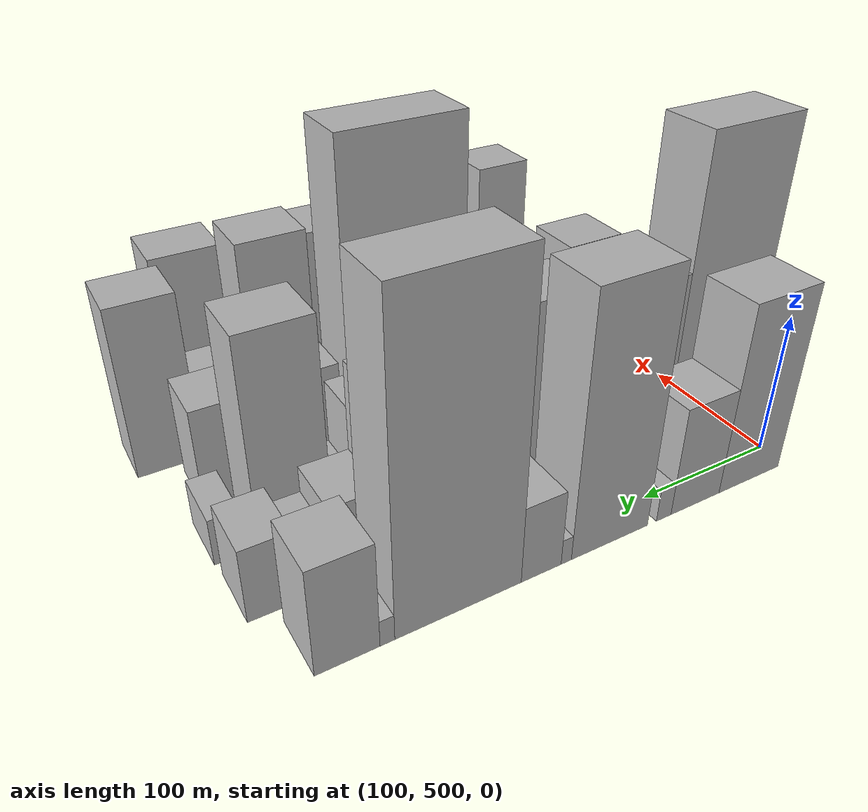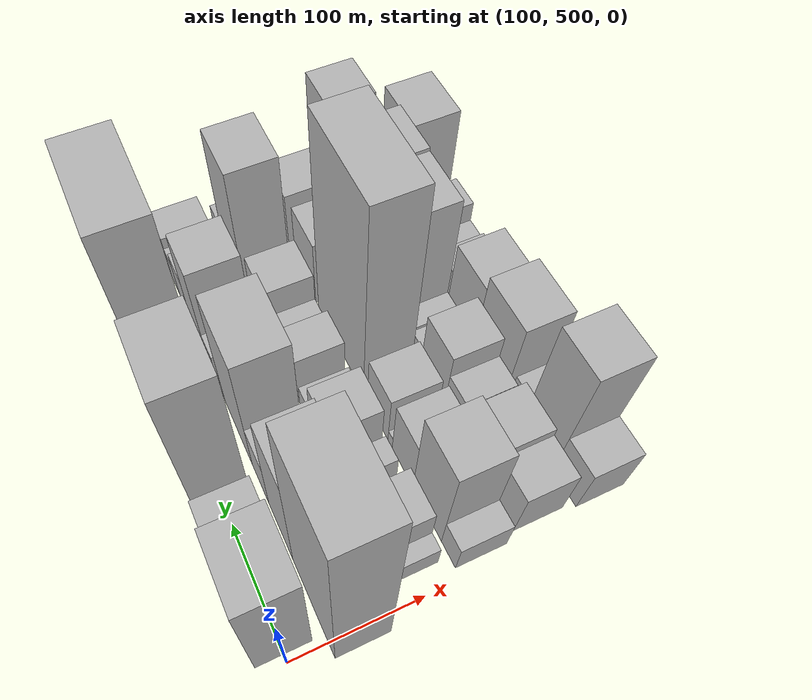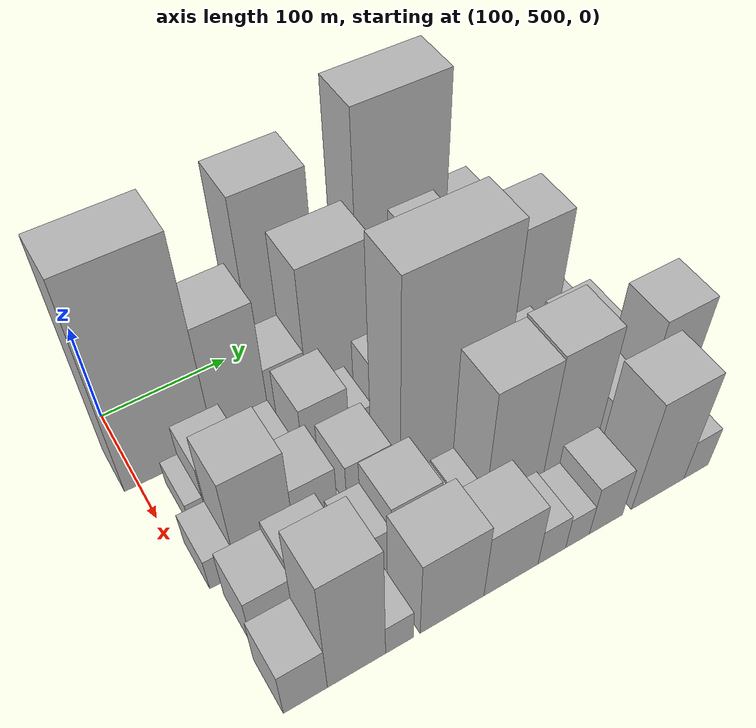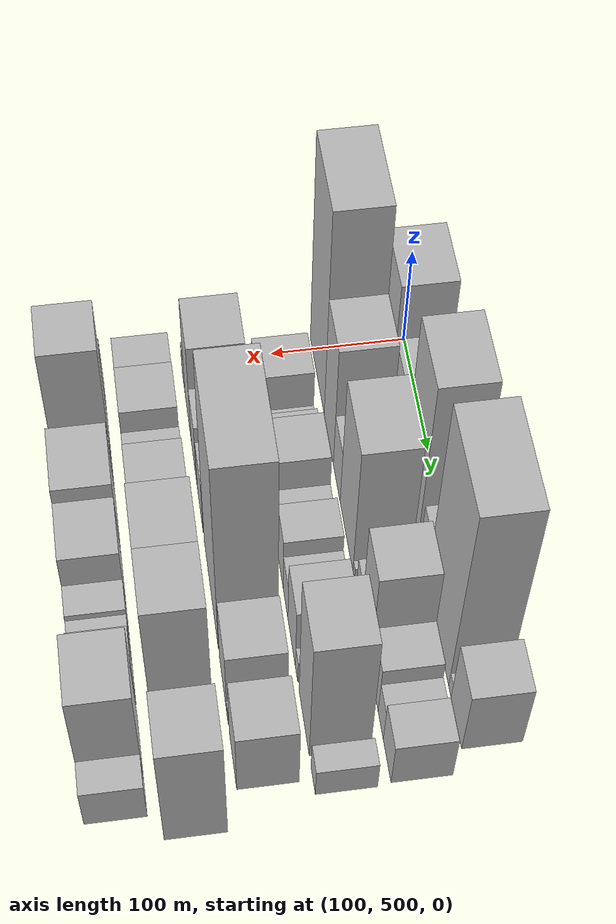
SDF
<sdf version="1.6">
 <world name="default">
  <model name="building_38">
   <static>1</static>
   <pose>100.0000 531.5187 0 0.000000 0.000000 0.000000</pose>
   <link name="link">
    <pose>0 0 67.50 0 0 0</pose>
    <collision name="collision"><geometry><box><size>40.0000 51.7555 135.0000</size></box></geometry></collision>
    <visual name="visual">
     <cast_shadows>0</cast_shadows>
     <geometry><box><size>40.0000 51.7555 135.0000</size></box></geometry>
     <material>
      <script>
       <uri>model://HANNAS_wall/materials/scripts</uri>
       <uri>model://HANNAS_wall/materials/textures</uri>
       <name>vrc/HANNAS_wall</name>
      </script>
     </material>
    </visual>
   </link>
  </model>
  <model name="building_39">
   <static>1</static>
   <pose>100.0000 577.1728 0 0.000000 0.000000 0.000000</pose>
   <link name="link">
    <pose>0 0 39.00 0 0 0</pose>
    <collision name="collision"><geometry><box><size>40.0000 39.5526 78.0000</size></box></geometry></collision>
    <visual name="visual">
     <cast_shadows>0</cast_shadows>
     <geometry><box><size>40.0000 39.5526 78.0000</size></box></geometry>
     <material>
      <script>
       <uri>model://HANNAS_wall/materials/scripts</uri>
       <uri>model://HANNAS_wall/materials/textures</uri>
       <name>vrc/HANNAS_wall</name>
      </script>
     </material>
    </visual>
   </link>
  </model>
  <model name="building_40">
   <static>1</static>
   <pose>100.0000 602.6989 0 0.000000 0.000000 0.000000</pose>
   <link name="link">
    <pose>0 0 12.00 0 0 0</pose>
    <collision name="collision"><geometry><box><size>40.0000 11.4995 24.0000</size></box></geometry></collision>
    <visual name="visual">
     <cast_shadows>0</cast_shadows>
     <geometry><box><size>40.0000 11.4995 24.0000</size></box></geometry>
     <material>
      <script>
       <uri>model://HANNAS_wall/materials/scripts</uri>
       <uri>model://HANNAS_wall/materials/textures</uri>
       <name>vrc/HANNAS_wall</name>
      </script>
     </material>
    </visual>
   </link>
  </model>
  <model name="building_41">
   <static>1</static>
   <pose>100.0000 643.7409 0 0.000000 0.000000 0.000000</pose>
   <link name="link">
    <pose>0 0 88.50 0 0 0</pose>
    <collision name="collision"><geometry><box><size>40.0000 56.5845 177.0000</size></box></geometry></collision>
    <visual name="visual">
     <cast_shadows>0</cast_shadows>
     <geometry><box><size>40.0000 56.5845 177.0000</size></box></geometry>
     <material>
      <script>
       <uri>model://HANNAS_wall/materials/scripts</uri>
       <uri>model://HANNAS_wall/materials/textures</uri>
       <name>vrc/HANNAS_wall</name>
      </script>
     </material>
    </visual>
   </link>
  </model>
  <model name="building_42">
   <static>1</static>
   <pose>100.0000 675.6521 0 0.000000 0.000000 0.000000</pose>
   <link name="link">
    <pose>0 0 9.00 0 0 0</pose>
    <collision name="collision"><geometry><box><size>40.0000 7.2379 18.0000</size></box></geometry></collision>
    <visual name="visual">
     <cast_shadows>0</cast_shadows>
     <geometry><box><size>40.0000 7.2379 18.0000</size></box></geometry>
     <material>
      <script>
       <uri>model://HANNAS_wall/materials/scripts</uri>
       <uri>model://HANNAS_wall/materials/textures</uri>
       <name>vrc/HANNAS_wall</name>
      </script>
     </material>
    </visual>
   </link>
  </model>
  <model name="building_43">
   <static>1</static>
   <pose>100.0000 692.9659 0 0.000000 0.000000 0.000000</pose>
   <link name="link">
    <pose>0 0 27.00 0 0 0</pose>
    <collision name="collision"><geometry><box><size>40.0000 27.3897 54.0000</size></box></geometry></collision>
    <visual name="visual">
     <cast_shadows>0</cast_shadows>
     <geometry><box><size>40.0000 27.3897 54.0000</size></box></geometry>
     <material>
      <script>
       <uri>model://HANNAS_wall/materials/scripts</uri>
       <uri>model://HANNAS_wall/materials/textures</uri>
       <name>vrc/HANNAS_wall</name>
      </script>
     </material>
    </visual>
   </link>
  </model>
  <model name="building_44">
   <static>1</static>
   <pose>100.0000 746.2942 0 0.000000 0.000000 0.000000</pose>
   <link name="link">
    <pose>0 0 105.00 0 0 0</pose>
    <collision name="collision"><geometry><box><size>40.0000 79.2670 210.0000</size></box></geometry></collision>
    <visual name="visual">
     <cast_shadows>0</cast_shadows>
     <geometry><box><size>40.0000 79.2670 210.0000</size></box></geometry>
     <material>
      <script>
       <uri>model://HANNAS_wall/materials/scripts</uri>
       <uri>model://HANNAS_wall/materials/textures</uri>
       <name>vrc/HANNAS_wall</name>
      </script>
     </material>
    </visual>
   </link>
  </model>
  <model name="building_45">
   <static>1</static>
   <pose>100.0000 790.2216 0 0.000000 0.000000 0.000000</pose>
   <link name="link">
    <pose>0 0 9.00 0 0 0</pose>
    <collision name="collision"><geometry><box><size>40.0000 8.5877 18.0000</size></box></geometry></collision>
    <visual name="visual">
     <cast_shadows>0</cast_shadows>
     <geometry><box><size>40.0000 8.5877 18.0000</size></box></geometry>
     <material>
      <script>
       <uri>model://HANNAS_wall/materials/scripts</uri>
       <uri>model://HANNAS_wall/materials/textures</uri>
       <name>vrc/HANNAS_wall</name>
      </script>
     </material>
    </visual>
   </link>
  </model>
  <model name="building_46">
   <static>1</static>
   <pose>100.0000 812.9221 0 0.000000 0.000000 0.000000</pose>
   <link name="link">
    <pose>0 0 36.00 0 0 0</pose>
    <collision name="collision"><geometry><box><size>40.0000 36.8133 72.0000</size></box></geometry></collision>
    <visual name="visual">
     <cast_shadows>0</cast_shadows>
     <geometry><box><size>40.0000 36.8133 72.0000</size></box></geometry>
     <material>
      <script>
       <uri>model://HANNAS_wall/materials/scripts</uri>
       <uri>model://HANNAS_wall/materials/textures</uri>
       <name>vrc/HANNAS_wall</name>
      </script>
     </material>
    </visual>
   </link>
  </model>
  <model name="building_85">
   <static>1</static>
   <pose>149.0000 524.4606 0 0.000000 0.000000 0.000000</pose>
   <link name="link">
    <pose>0 0 109.50 0 0 0</pose>
    <collision name="collision"><geometry><box><size>40.0000 69.9569 219.0000</size></box></geometry></collision>
    <visual name="visual">
     <cast_shadows>0</cast_shadows>
     <geometry><box><size>40.0000 69.9569 219.0000</size></box></geometry>
     <material>
      <script>
       <uri>model://HANNAS_wall/materials/scripts</uri>
       <uri>model://HANNAS_wall/materials/textures</uri>
       <name>vrc/HANNAS_wall</name>
      </script>
     </material>
    </visual>
   </link>
  </model>
  <model name="building_86">
   <static>1</static>
   <pose>149.0000 581.4133 0 0.000000 0.000000 0.000000</pose>
   <link name="link">
    <pose>0 0 66.00 0 0 0</pose>
    <collision name="collision"><geometry><box><size>40.0000 43.9486 132.0000</size></box></geometry></collision>
    <visual name="visual">
     <cast_shadows>0</cast_shadows>
     <geometry><box><size>40.0000 43.9486 132.0000</size></box></geometry>
     <material>
      <script>
       <uri>model://HANNAS_wall/materials/scripts</uri>
       <uri>model://HANNAS_wall/materials/textures</uri>
       <name>vrc/HANNAS_wall</name>
      </script>
     </material>
    </visual>
   </link>
  </model>
  <model name="building_87">
   <static>1</static>
   <pose>149.0000 619.3359 0 0.000000 0.000000 0.000000</pose>
   <link name="link">
    <pose>0 0 30.00 0 0 0</pose>
    <collision name="collision"><geometry><box><size>40.0000 31.8965 60.0000</size></box></geometry></collision>
    <visual name="visual">
     <cast_shadows>0</cast_shadows>
     <geometry><box><size>40.0000 31.8965 60.0000</size></box></geometry>
     <material>
      <script>
       <uri>model://HANNAS_wall/materials/scripts</uri>
       <uri>model://HANNAS_wall/materials/textures</uri>
       <name>vrc/HANNAS_wall</name>
      </script>
     </material>
    </visual>
   </link>
  </model>
  <model name="building_88">
   <static>1</static>
   <pose>149.0000 663.8226 0 0.000000 0.000000 0.000000</pose>
   <link name="link">
    <pose>0 0 72.00 0 0 0</pose>
    <collision name="collision"><geometry><box><size>40.0000 57.0769 144.0000</size></box></geometry></collision>
    <visual name="visual">
     <cast_shadows>0</cast_shadows>
     <geometry><box><size>40.0000 57.0769 144.0000</size></box></geometry>
     <material>
      <script>
       <uri>model://HANNAS_wall/materials/scripts</uri>
       <uri>model://HANNAS_wall/materials/textures</uri>
       <name>vrc/HANNAS_wall</name>
      </script>
     </material>
    </visual>
   </link>
  </model>
  <model name="building_89">
   <static>1</static>
   <pose>149.0000 695.7765 0 0.000000 0.000000 0.000000</pose>
   <link name="link">
    <pose>0 0 7.50 0 0 0</pose>
    <collision name="collision"><geometry><box><size>40.0000 6.8309 15.0000</size></box></geometry></collision>
    <visual name="visual">
     <cast_shadows>0</cast_shadows>
     <geometry><box><size>40.0000 6.8309 15.0000</size></box></geometry>
     <material>
      <script>
       <uri>model://HANNAS_wall/materials/scripts</uri>
       <uri>model://HANNAS_wall/materials/textures</uri>
       <name>vrc/HANNAS_wall</name>
      </script>
     </material>
    </visual>
   </link>
  </model>
  <model name="building_90">
   <static>1</static>
   <pose>149.0000 718.0251 0 0.000000 0.000000 0.000000</pose>
   <link name="link">
    <pose>0 0 21.00 0 0 0</pose>
    <collision name="collision"><geometry><box><size>40.0000 21.6663 42.0000</size></box></geometry></collision>
    <visual name="visual">
     <cast_shadows>0</cast_shadows>
     <geometry><box><size>40.0000 21.6663 42.0000</size></box></geometry>
     <material>
      <script>
       <uri>model://HANNAS_wall/materials/scripts</uri>
       <uri>model://HANNAS_wall/materials/textures</uri>
       <name>vrc/HANNAS_wall</name>
      </script>
     </material>
    </visual>
   </link>
  </model>
  <model name="building_91">
   <static>1</static>
   <pose>149.0000 748.0016 0 0.000000 0.000000 0.000000</pose>
   <link name="link">
    <pose>0 0 58.50 0 0 0</pose>
    <collision name="collision"><geometry><box><size>40.0000 38.2867 117.0000</size></box></geometry></collision>
    <visual name="visual">
     <cast_shadows>0</cast_shadows>
     <geometry><box><size>40.0000 38.2867 117.0000</size></box></geometry>
     <material>
      <script>
       <uri>model://HANNAS_wall/materials/scripts</uri>
       <uri>model://HANNAS_wall/materials/textures</uri>
       <name>vrc/HANNAS_wall</name>
      </script>
     </material>
    </visual>
   </link>
  </model>
  <model name="building_92">
   <static>1</static>
   <pose>149.0000 782.6571 0 0.000000 0.000000 0.000000</pose>
   <link name="link">
    <pose>0 0 28.50 0 0 0</pose>
    <collision name="collision"><geometry><box><size>40.0000 31.0244 57.0000</size></box></geometry></collision>
    <visual name="visual">
     <cast_shadows>0</cast_shadows>
     <geometry><box><size>40.0000 31.0244 57.0000</size></box></geometry>
     <material>
      <script>
       <uri>model://HANNAS_wall/materials/scripts</uri>
       <uri>model://HANNAS_wall/materials/textures</uri>
       <name>vrc/HANNAS_wall</name>
      </script>
     </material>
    </visual>
   </link>
  </model>
  <model name="building_93">
   <static>1</static>
   <pose>149.0000 808.3159 0 0.000000 0.000000 0.000000</pose>
   <link name="link">
    <pose>0 0 19.50 0 0 0</pose>
    <collision name="collision"><geometry><box><size>40.0000 20.2931 39.0000</size></box></geometry></collision>
    <visual name="visual">
     <cast_shadows>0</cast_shadows>
     <geometry><box><size>40.0000 20.2931 39.0000</size></box></geometry>
     <material>
      <script>
       <uri>model://HANNAS_wall/materials/scripts</uri>
       <uri>model://HANNAS_wall/materials/textures</uri>
       <name>vrc/HANNAS_wall</name>
      </script>
     </material>
    </visual>
   </link>
  </model>
  <model name="building_94">
   <static>1</static>
   <pose>149.0000 833.4005 0 0.000000 0.000000 0.000000</pose>
   <link name="link">
    <pose>0 0 25.50 0 0 0</pose>
    <collision name="collision"><geometry><box><size>40.0000 29.8762 51.0000</size></box></geometry></collision>
    <visual name="visual">
     <cast_shadows>0</cast_shadows>
     <geometry><box><size>40.0000 29.8762 51.0000</size></box></geometry>
     <material>
      <script>
       <uri>model://HANNAS_wall/materials/scripts</uri>
       <uri>model://HANNAS_wall/materials/textures</uri>
       <name>vrc/HANNAS_wall</name>
      </script>
     </material>
    </visual>
   </link>
  </model>
  <model name="building_135">
   <static>1</static>
   <pose>198.0000 523.2505 0 0.000000 0.000000 0.000000</pose>
   <link name="link">
    <pose>0 0 13.50 0 0 0</pose>
    <collision name="collision"><geometry><box><size>40.0000 12.9274 27.0000</size></box></geometry></collision>
    <visual name="visual">
     <cast_shadows>0</cast_shadows>
     <geometry><box><size>40.0000 12.9274 27.0000</size></box></geometry>
     <material>
      <script>
       <uri>model://HANNAS_wall/materials/scripts</uri>
       <uri>model://HANNAS_wall/materials/textures</uri>
       <name>vrc/HANNAS_wall</name>
      </script>
     </material>
    </visual>
   </link>
  </model>
  <model name="building_136">
   <static>1</static>
   <pose>198.0000 547.5036 0 0.000000 0.000000 0.000000</pose>
   <link name="link">
    <pose>0 0 30.00 0 0 0</pose>
    <collision name="collision"><geometry><box><size>40.0000 35.5788 60.0000</size></box></geometry></collision>
    <visual name="visual">
     <cast_shadows>0</cast_shadows>
     <geometry><box><size>40.0000 35.5788 60.0000</size></box></geometry>
     <material>
      <script>
       <uri>model://HANNAS_wall/materials/scripts</uri>
       <uri>model://HANNAS_wall/materials/textures</uri>
       <name>vrc/HANNAS_wall</name>
      </script>
     </material>
    </visual>
   </link>
  </model>
  <model name="building_137">
   <static>1</static>
   <pose>198.0000 570.0635 0 0.000000 0.000000 0.000000</pose>
   <link name="link">
    <pose>0 0 10.50 0 0 0</pose>
    <collision name="collision"><geometry><box><size>40.0000 9.5410 21.0000</size></box></geometry></collision>
    <visual name="visual">
     <cast_shadows>0</cast_shadows>
     <geometry><box><size>40.0000 9.5410 21.0000</size></box></geometry>
     <material>
      <script>
       <uri>model://HANNAS_wall/materials/scripts</uri>
       <uri>model://HANNAS_wall/materials/textures</uri>
       <name>vrc/HANNAS_wall</name>
      </script>
     </material>
    </visual>
   </link>
  </model>
  <model name="building_138">
   <static>1</static>
   <pose>198.0000 590.6303 0 0.000000 0.000000 0.000000</pose>
   <link name="link">
    <pose>0 0 19.50 0 0 0</pose>
    <collision name="collision"><geometry><box><size>40.0000 19.5926 39.0000</size></box></geometry></collision>
    <visual name="visual">
     <cast_shadows>0</cast_shadows>
     <geometry><box><size>40.0000 19.5926 39.0000</size></box></geometry>
     <material>
      <script>
       <uri>model://HANNAS_wall/materials/scripts</uri>
       <uri>model://HANNAS_wall/materials/textures</uri>
       <name>vrc/HANNAS_wall</name>
      </script>
     </material>
    </visual>
   </link>
  </model>
  <model name="building_139">
   <static>1</static>
   <pose>198.0000 623.9545 0 0.000000 0.000000 0.000000</pose>
   <link name="link">
    <pose>0 0 34.50 0 0 0</pose>
    <collision name="collision"><geometry><box><size>40.0000 37.0558 69.0000</size></box></geometry></collision>
    <visual name="visual">
     <cast_shadows>0</cast_shadows>
     <geometry><box><size>40.0000 37.0558 69.0000</size></box></geometry>
     <material>
      <script>
       <uri>model://HANNAS_wall/materials/scripts</uri>
       <uri>model://HANNAS_wall/materials/textures</uri>
       <name>vrc/HANNAS_wall</name>
      </script>
     </material>
    </visual>
   </link>
  </model>
  <model name="building_140">
   <static>1</static>
   <pose>198.0000 652.1464 0 0.000000 0.000000 0.000000</pose>
   <link name="link">
    <pose>0 0 18.00 0 0 0</pose>
    <collision name="collision"><geometry><box><size>40.0000 19.3281 36.0000</size></box></geometry></collision>
    <visual name="visual">
     <cast_shadows>0</cast_shadows>
     <geometry><box><size>40.0000 19.3281 36.0000</size></box></geometry>
     <material>
      <script>
       <uri>model://HANNAS_wall/materials/scripts</uri>
       <uri>model://HANNAS_wall/materials/textures</uri>
       <name>vrc/HANNAS_wall</name>
      </script>
     </material>
    </visual>
   </link>
  </model>
  <model name="building_141">
   <static>1</static>
   <pose>198.0000 683.8587 0 0.000000 0.000000 0.000000</pose>
   <link name="link">
    <pose>0 0 30.00 0 0 0</pose>
    <collision name="collision"><geometry><box><size>40.0000 30.0965 60.0000</size></box></geometry></collision>
    <visual name="visual">
     <cast_shadows>0</cast_shadows>
     <geometry><box><size>40.0000 30.0965 60.0000</size></box></geometry>
     <material>
      <script>
       <uri>model://HANNAS_wall/materials/scripts</uri>
       <uri>model://HANNAS_wall/materials/textures</uri>
       <name>vrc/HANNAS_wall</name>
      </script>
     </material>
    </visual>
   </link>
  </model>
  <model name="building_142">
   <static>1</static>
   <pose>198.0000 711.0326 0 0.000000 0.000000 0.000000</pose>
   <link name="link">
    <pose>0 0 21.00 0 0 0</pose>
    <collision name="collision"><geometry><box><size>40.0000 24.2514 42.0000</size></box></geometry></collision>
    <visual name="visual">
     <cast_shadows>0</cast_shadows>
     <geometry><box><size>40.0000 24.2514 42.0000</size></box></geometry>
     <material>
      <script>
       <uri>model://HANNAS_wall/materials/scripts</uri>
       <uri>model://HANNAS_wall/materials/textures</uri>
       <name>vrc/HANNAS_wall</name>
      </script>
     </material>
    </visual>
   </link>
  </model>
  <model name="building_143">
   <static>1</static>
   <pose>198.0000 741.2313 0 0.000000 0.000000 0.000000</pose>
   <link name="link">
    <pose>0 0 36.00 0 0 0</pose>
    <collision name="collision"><geometry><box><size>40.0000 36.1459 72.0000</size></box></geometry></collision>
    <visual name="visual">
     <cast_shadows>0</cast_shadows>
     <geometry><box><size>40.0000 36.1459 72.0000</size></box></geometry>
     <material>
      <script>
       <uri>model://HANNAS_wall/materials/scripts</uri>
       <uri>model://HANNAS_wall/materials/textures</uri>
       <name>vrc/HANNAS_wall</name>
      </script>
     </material>
    </visual>
   </link>
  </model>
  <model name="building_144">
   <static>1</static>
   <pose>198.0000 764.8537 0 0.000000 0.000000 0.000000</pose>
   <link name="link">
    <pose>0 0 13.50 0 0 0</pose>
    <collision name="collision"><geometry><box><size>40.0000 11.0989 27.0000</size></box></geometry></collision>
    <visual name="visual">
     <cast_shadows>0</cast_shadows>
     <geometry><box><size>40.0000 11.0989 27.0000</size></box></geometry>
     <material>
      <script>
       <uri>model://HANNAS_wall/materials/scripts</uri>
       <uri>model://HANNAS_wall/materials/textures</uri>
       <name>vrc/HANNAS_wall</name>
      </script>
     </material>
    </visual>
   </link>
  </model>
  <model name="building_145">
   <static>1</static>
   <pose>198.0000 799.8292 0 0.000000 0.000000 0.000000</pose>
   <link name="link">
    <pose>0 0 72.00 0 0 0</pose>
    <collision name="collision"><geometry><box><size>40.0000 46.8521 144.0000</size></box></geometry></collision>
    <visual name="visual">
     <cast_shadows>0</cast_shadows>
     <geometry><box><size>40.0000 46.8521 144.0000</size></box></geometry>
     <material>
      <script>
       <uri>model://HANNAS_wall/materials/scripts</uri>
       <uri>model://HANNAS_wall/materials/textures</uri>
       <name>vrc/HANNAS_wall</name>
      </script>
     </material>
    </visual>
   </link>
  </model>
  <model name="building_146">
   <static>1</static>
   <pose>198.0000 840.6424 0 0.000000 0.000000 0.000000</pose>
   <link name="link">
    <pose>0 0 16.50 0 0 0</pose>
    <collision name="collision"><geometry><box><size>40.0000 18.7744 33.0000</size></box></geometry></collision>
    <visual name="visual">
     <cast_shadows>0</cast_shadows>
     <geometry><box><size>40.0000 18.7744 33.0000</size></box></geometry>
     <material>
      <script>
       <uri>model://HANNAS_wall/materials/scripts</uri>
       <uri>model://HANNAS_wall/materials/textures</uri>
       <name>vrc/HANNAS_wall</name>
      </script>
     </material>
    </visual>
   </link>
  </model>
  <model name="building_193">
   <static>1</static>
   <pose>247.0000 518.3619 0 0.000000 0.000000 0.000000</pose>
   <link name="link">
    <pose>0 0 18.00 0 0 0</pose>
    <collision name="collision"><geometry><box><size>40.0000 20.2683 36.0000</size></box></geometry></collision>
    <visual name="visual">
     <cast_shadows>0</cast_shadows>
     <geometry><box><size>40.0000 20.2683 36.0000</size></box></geometry>
     <material>
      <script>
       <uri>model://HANNAS_wall/materials/scripts</uri>
       <uri>model://HANNAS_wall/materials/textures</uri>
       <name>vrc/HANNAS_wall</name>
      </script>
     </material>
    </visual>
   </link>
  </model>
  <model name="building_194">
   <static>1</static>
   <pose>247.0000 550.2329 0 0.000000 0.000000 0.000000</pose>
   <link name="link">
    <pose>0 0 55.50 0 0 0</pose>
    <collision name="collision"><geometry><box><size>40.0000 43.4738 111.0000</size></box></geometry></collision>
    <visual name="visual">
     <cast_shadows>0</cast_shadows>
     <geometry><box><size>40.0000 43.4738 111.0000</size></box></geometry>
     <material>
      <script>
       <uri>model://HANNAS_wall/materials/scripts</uri>
       <uri>model://HANNAS_wall/materials/textures</uri>
       <name>vrc/HANNAS_wall</name>
      </script>
     </material>
    </visual>
   </link>
  </model>
  <model name="building_195">
   <static>1</static>
   <pose>247.0000 588.5417 0 0.000000 0.000000 0.000000</pose>
   <link name="link">
    <pose>0 0 33.00 0 0 0</pose>
    <collision name="collision"><geometry><box><size>40.0000 33.1437 66.0000</size></box></geometry></collision>
    <visual name="visual">
     <cast_shadows>0</cast_shadows>
     <geometry><box><size>40.0000 33.1437 66.0000</size></box></geometry>
     <material>
      <script>
       <uri>model://HANNAS_wall/materials/scripts</uri>
       <uri>model://HANNAS_wall/materials/textures</uri>
       <name>vrc/HANNAS_wall</name>
      </script>
     </material>
    </visual>
   </link>
  </model>
  <model name="building_196">
   <static>1</static>
   <pose>247.0000 608.7478 0 0.000000 0.000000 0.000000</pose>
   <link name="link">
    <pose>0 0 7.50 0 0 0</pose>
    <collision name="collision"><geometry><box><size>40.0000 7.2685 15.0000</size></box></geometry></collision>
    <visual name="visual">
     <cast_shadows>0</cast_shadows>
     <geometry><box><size>40.0000 7.2685 15.0000</size></box></geometry>
     <material>
      <script>
       <uri>model://HANNAS_wall/materials/scripts</uri>
       <uri>model://HANNAS_wall/materials/textures</uri>
       <name>vrc/HANNAS_wall</name>
      </script>
     </material>
    </visual>
   </link>
  </model>
  <model name="building_197">
   <static>1</static>
   <pose>247.0000 630.0048 0 0.000000 0.000000 0.000000</pose>
   <link name="link">
    <pose>0 0 30.00 0 0 0</pose>
    <collision name="collision"><geometry><box><size>40.0000 35.2453 60.0000</size></box></geometry></collision>
    <visual name="visual">
     <cast_shadows>0</cast_shadows>
     <geometry><box><size>40.0000 35.2453 60.0000</size></box></geometry>
     <material>
      <script>
       <uri>model://HANNAS_wall/materials/scripts</uri>
       <uri>model://HANNAS_wall/materials/textures</uri>
       <name>vrc/HANNAS_wall</name>
      </script>
     </material>
    </visual>
   </link>
  </model>
  <model name="building_198">
   <static>1</static>
   <pose>247.0000 697.0802 0 0.000000 0.000000 0.000000</pose>
   <link name="link">
    <pose>0 0 109.50 0 0 0</pose>
    <collision name="collision"><geometry><box><size>40.0000 84.9056 219.0000</size></box></geometry></collision>
    <visual name="visual">
     <cast_shadows>0</cast_shadows>
     <geometry><box><size>40.0000 84.9056 219.0000</size></box></geometry>
     <material>
      <script>
       <uri>model://HANNAS_wall/materials/scripts</uri>
       <uri>model://HANNAS_wall/materials/textures</uri>
       <name>vrc/HANNAS_wall</name>
      </script>
     </material>
    </visual>
   </link>
  </model>
  <model name="building_199">
   <static>1</static>
   <pose>247.0000 766.0458 0 0.000000 0.000000 0.000000</pose>
   <link name="link">
    <pose>0 0 37.50 0 0 0</pose>
    <collision name="collision"><geometry><box><size>40.0000 41.0257 75.0000</size></box></geometry></collision>
    <visual name="visual">
     <cast_shadows>0</cast_shadows>
     <geometry><box><size>40.0000 41.0257 75.0000</size></box></geometry>
     <material>
      <script>
       <uri>model://HANNAS_wall/materials/scripts</uri>
       <uri>model://HANNAS_wall/materials/textures</uri>
       <name>vrc/HANNAS_wall</name>
      </script>
     </material>
    </visual>
   </link>
  </model>
  <model name="building_200">
   <static>1</static>
   <pose>247.0000 790.5313 0 0.000000 0.000000 0.000000</pose>
   <link name="link">
    <pose>0 0 9.00 0 0 0</pose>
    <collision name="collision"><geometry><box><size>40.0000 7.9451 18.0000</size></box></geometry></collision>
    <visual name="visual">
     <cast_shadows>0</cast_shadows>
     <geometry><box><size>40.0000 7.9451 18.0000</size></box></geometry>
     <material>
      <script>
       <uri>model://HANNAS_wall/materials/scripts</uri>
       <uri>model://HANNAS_wall/materials/textures</uri>
       <name>vrc/HANNAS_wall</name>
      </script>
     </material>
    </visual>
   </link>
  </model>
  <model name="building_201">
   <static>1</static>
   <pose>247.0000 820.3309 0 0.000000 0.000000 0.000000</pose>
   <link name="link">
    <pose>0 0 36.00 0 0 0</pose>
    <collision name="collision"><geometry><box><size>40.0000 39.6542 72.0000</size></box></geometry></collision>
    <visual name="visual">
     <cast_shadows>0</cast_shadows>
     <geometry><box><size>40.0000 39.6542 72.0000</size></box></geometry>
     <material>
      <script>
       <uri>model://HANNAS_wall/materials/scripts</uri>
       <uri>model://HANNAS_wall/materials/textures</uri>
       <name>vrc/HANNAS_wall</name>
      </script>
     </material>
    </visual>
   </link>
  </model>
  <model name="building_240">
   <static>1</static>
   <pose>296.0000 530.5845 0 0.000000 0.000000 0.000000</pose>
   <link name="link">
    <pose>0 0 28.50 0 0 0</pose>
    <collision name="collision"><geometry><box><size>40.0000 32.8591 57.0000</size></box></geometry></collision>
    <visual name="visual">
     <cast_shadows>0</cast_shadows>
     <geometry><box><size>40.0000 32.8591 57.0000</size></box></geometry>
     <material>
      <script>
       <uri>model://HANNAS_wall/materials/scripts</uri>
       <uri>model://HANNAS_wall/materials/textures</uri>
       <name>vrc/HANNAS_wall</name>
      </script>
     </material>
    </visual>
   </link>
  </model>
  <model name="building_241">
   <static>1</static>
   <pose>296.0000 566.3712 0 0.000000 0.000000 0.000000</pose>
   <link name="link">
    <pose>0 0 33.00 0 0 0</pose>
    <collision name="collision"><geometry><box><size>40.0000 38.7142 66.0000</size></box></geometry></collision>
    <visual name="visual">
     <cast_shadows>0</cast_shadows>
     <geometry><box><size>40.0000 38.7142 66.0000</size></box></geometry>
     <material>
      <script>
       <uri>model://HANNAS_wall/materials/scripts</uri>
       <uri>model://HANNAS_wall/materials/textures</uri>
       <name>vrc/HANNAS_wall</name>
      </script>
     </material>
    </visual>
   </link>
  </model>
  <model name="building_242">
   <static>1</static>
   <pose>296.0000 604.6498 0 0.000000 0.000000 0.000000</pose>
   <link name="link">
    <pose>0 0 25.50 0 0 0</pose>
    <collision name="collision"><geometry><box><size>40.0000 25.8428 51.0000</size></box></geometry></collision>
    <visual name="visual">
     <cast_shadows>0</cast_shadows>
     <geometry><box><size>40.0000 25.8428 51.0000</size></box></geometry>
     <material>
      <script>
       <uri>model://HANNAS_wall/materials/scripts</uri>
       <uri>model://HANNAS_wall/materials/textures</uri>
       <name>vrc/HANNAS_wall</name>
      </script>
     </material>
    </visual>
   </link>
  </model>
  <model name="building_243">
   <static>1</static>
   <pose>296.0000 636.4764 0 0.000000 0.000000 0.000000</pose>
   <link name="link">
    <pose>0 0 37.50 0 0 0</pose>
    <collision name="collision"><geometry><box><size>40.0000 37.8104 75.0000</size></box></geometry></collision>
    <visual name="visual">
     <cast_shadows>0</cast_shadows>
     <geometry><box><size>40.0000 37.8104 75.0000</size></box></geometry>
     <material>
      <script>
       <uri>model://HANNAS_wall/materials/scripts</uri>
       <uri>model://HANNAS_wall/materials/textures</uri>
       <name>vrc/HANNAS_wall</name>
      </script>
     </material>
    </visual>
   </link>
  </model>
  <model name="building_244">
   <static>1</static>
   <pose>296.0000 664.1438 0 0.000000 0.000000 0.000000</pose>
   <link name="link">
    <pose>0 0 15.00 0 0 0</pose>
    <collision name="collision"><geometry><box><size>40.0000 17.5244 30.0000</size></box></geometry></collision>
    <visual name="visual">
     <cast_shadows>0</cast_shadows>
     <geometry><box><size>40.0000 17.5244 30.0000</size></box></geometry>
     <material>
      <script>
       <uri>model://HANNAS_wall/materials/scripts</uri>
       <uri>model://HANNAS_wall/materials/textures</uri>
       <name>vrc/HANNAS_wall</name>
      </script>
     </material>
    </visual>
   </link>
  </model>
  <model name="building_245">
   <static>1</static>
   <pose>296.0000 682.3050 0 0.000000 0.000000 0.000000</pose>
   <link name="link">
    <pose>0 0 16.50 0 0 0</pose>
    <collision name="collision"><geometry><box><size>40.0000 18.7980 33.0000</size></box></geometry></collision>
    <visual name="visual">
     <cast_shadows>0</cast_shadows>
     <geometry><box><size>40.0000 18.7980 33.0000</size></box></geometry>
     <material>
      <script>
       <uri>model://HANNAS_wall/materials/scripts</uri>
       <uri>model://HANNAS_wall/materials/textures</uri>
       <name>vrc/HANNAS_wall</name>
      </script>
     </material>
    </visual>
   </link>
  </model>
  <model name="building_246">
   <static>1</static>
   <pose>296.0000 716.1112 0 0.000000 0.000000 0.000000</pose>
   <link name="link">
    <pose>0 0 70.50 0 0 0</pose>
    <collision name="collision"><geometry><box><size>40.0000 48.8146 141.0000</size></box></geometry></collision>
    <visual name="visual">
     <cast_shadows>0</cast_shadows>
     <geometry><box><size>40.0000 48.8146 141.0000</size></box></geometry>
     <material>
      <script>
       <uri>model://HANNAS_wall/materials/scripts</uri>
       <uri>model://HANNAS_wall/materials/textures</uri>
       <name>vrc/HANNAS_wall</name>
      </script>
     </material>
    </visual>
   </link>
  </model>
  <model name="building_247">
   <static>1</static>
   <pose>296.0000 763.4097 0 0.000000 0.000000 0.000000</pose>
   <link name="link">
    <pose>0 0 72.00 0 0 0</pose>
    <collision name="collision"><geometry><box><size>40.0000 45.7824 144.0000</size></box></geometry></collision>
    <visual name="visual">
     <cast_shadows>0</cast_shadows>
     <geometry><box><size>40.0000 45.7824 144.0000</size></box></geometry>
     <material>
      <script>
       <uri>model://HANNAS_wall/materials/scripts</uri>
       <uri>model://HANNAS_wall/materials/textures</uri>
       <name>vrc/HANNAS_wall</name>
      </script>
     </material>
    </visual>
   </link>
  </model>
  <model name="building_248">
   <static>1</static>
   <pose>296.0000 809.6739 0 0.000000 0.000000 0.000000</pose>
   <link name="link">
    <pose>0 0 28.50 0 0 0</pose>
    <collision name="collision"><geometry><box><size>40.0000 30.7460 57.0000</size></box></geometry></collision>
    <visual name="visual">
     <cast_shadows>0</cast_shadows>
     <geometry><box><size>40.0000 30.7460 57.0000</size></box></geometry>
     <material>
      <script>
       <uri>model://HANNAS_wall/materials/scripts</uri>
       <uri>model://HANNAS_wall/materials/textures</uri>
       <name>vrc/HANNAS_wall</name>
      </script>
     </material>
    </visual>
   </link>
  </model>
  <model name="building_249">
   <static>1</static>
   <pose>296.0000 846.3591 0 0.000000 0.000000 0.000000</pose>
   <link name="link">
    <pose>0 0 61.50 0 0 0</pose>
    <collision name="collision"><geometry><box><size>40.0000 42.6244 123.0000</size></box></geometry></collision>
    <visual name="visual">
     <cast_shadows>0</cast_shadows>
     <geometry><box><size>40.0000 42.6244 123.0000</size></box></geometry>
     <material>
      <script>
       <uri>model://HANNAS_wall/materials/scripts</uri>
       <uri>model://HANNAS_wall/materials/textures</uri>
       <name>vrc/HANNAS_wall</name>
      </script>
     </material>
    </visual>
   </link>
  </model>
  <model name="building_290">
   <static>1</static>
   <pose>345.0000 526.0200 0 0.000000 0.000000 0.000000</pose>
   <link name="link">
    <pose>0 0 27.00 0 0 0</pose>
    <collision name="collision"><geometry><box><size>40.0000 30.6788 54.0000</size></box></geometry></collision>
    <visual name="visual">
     <cast_shadows>0</cast_shadows>
     <geometry><box><size>40.0000 30.6788 54.0000</size></box></geometry>
     <material>
      <script>
       <uri>model://HANNAS_wall/materials/scripts</uri>
       <uri>model://HANNAS_wall/materials/textures</uri>
       <name>vrc/HANNAS_wall</name>
      </script>
     </material>
    </visual>
   </link>
  </model>
  <model name="building_291">
   <static>1</static>
   <pose>345.0000 562.2953 0 0.000000 0.000000 0.000000</pose>
   <link name="link">
    <pose>0 0 67.50 0 0 0</pose>
    <collision name="collision"><geometry><box><size>40.0000 41.8718 135.0000</size></box></geometry></collision>
    <visual name="visual">
     <cast_shadows>0</cast_shadows>
     <geometry><box><size>40.0000 41.8718 135.0000</size></box></geometry>
     <material>
      <script>
       <uri>model://HANNAS_wall/materials/scripts</uri>
       <uri>model://HANNAS_wall/materials/textures</uri>
       <name>vrc/HANNAS_wall</name>
      </script>
     </material>
    </visual>
   </link>
  </model>
  <model name="building_292">
   <static>1</static>
   <pose>345.0000 593.5664 0 0.000000 0.000000 0.000000</pose>
   <link name="link">
    <pose>0 0 18.00 0 0 0</pose>
    <collision name="collision"><geometry><box><size>40.0000 20.6703 36.0000</size></box></geometry></collision>
    <visual name="visual">
     <cast_shadows>0</cast_shadows>
     <geometry><box><size>40.0000 20.6703 36.0000</size></box></geometry>
     <material>
      <script>
       <uri>model://HANNAS_wall/materials/scripts</uri>
       <uri>model://HANNAS_wall/materials/textures</uri>
       <name>vrc/HANNAS_wall</name>
      </script>
     </material>
    </visual>
   </link>
  </model>
  <model name="building_293">
   <static>1</static>
   <pose>345.0000 633.5278 0 0.000000 0.000000 0.000000</pose>
   <link name="link">
    <pose>0 0 45.00 0 0 0</pose>
    <collision name="collision"><geometry><box><size>40.0000 49.2525 90.0000</size></box></geometry></collision>
    <visual name="visual">
     <cast_shadows>0</cast_shadows>
     <geometry><box><size>40.0000 49.2525 90.0000</size></box></geometry>
     <material>
      <script>
       <uri>model://HANNAS_wall/materials/scripts</uri>
       <uri>model://HANNAS_wall/materials/textures</uri>
       <name>vrc/HANNAS_wall</name>
      </script>
     </material>
    </visual>
   </link>
  </model>
  <model name="building_294">
   <static>1</static>
   <pose>345.0000 679.8831 0 0.000000 0.000000 0.000000</pose>
   <link name="link">
    <pose>0 0 37.50 0 0 0</pose>
    <collision name="collision"><geometry><box><size>40.0000 43.4581 75.0000</size></box></geometry></collision>
    <visual name="visual">
     <cast_shadows>0</cast_shadows>
     <geometry><box><size>40.0000 43.4581 75.0000</size></box></geometry>
     <material>
      <script>
       <uri>model://HANNAS_wall/materials/scripts</uri>
       <uri>model://HANNAS_wall/materials/textures</uri>
       <name>vrc/HANNAS_wall</name>
      </script>
     </material>
    </visual>
   </link>
  </model>
  <model name="building_295">
   <static>1</static>
   <pose>345.0000 713.0613 0 0.000000 0.000000 0.000000</pose>
   <link name="link">
    <pose>0 0 21.00 0 0 0</pose>
    <collision name="collision"><geometry><box><size>40.0000 22.8981 42.0000</size></box></geometry></collision>
    <visual name="visual">
     <cast_shadows>0</cast_shadows>
     <geometry><box><size>40.0000 22.8981 42.0000</size></box></geometry>
     <material>
      <script>
       <uri>model://HANNAS_wall/materials/scripts</uri>
       <uri>model://HANNAS_wall/materials/textures</uri>
       <name>vrc/HANNAS_wall</name>
      </script>
     </material>
    </visual>
   </link>
  </model>
  <model name="building_296">
   <static>1</static>
   <pose>345.0000 734.5554 0 0.000000 0.000000 0.000000</pose>
   <link name="link">
    <pose>0 0 18.00 0 0 0</pose>
    <collision name="collision"><geometry><box><size>40.0000 20.0901 36.0000</size></box></geometry></collision>
    <visual name="visual">
     <cast_shadows>0</cast_shadows>
     <geometry><box><size>40.0000 20.0901 36.0000</size></box></geometry>
     <material>
      <script>
       <uri>model://HANNAS_wall/materials/scripts</uri>
       <uri>model://HANNAS_wall/materials/textures</uri>
       <name>vrc/HANNAS_wall</name>
      </script>
     </material>
    </visual>
   </link>
  </model>
  <model name="building_297">
   <static>1</static>
   <pose>345.0000 758.8683 0 0.000000 0.000000 0.000000</pose>
   <link name="link">
    <pose>0 0 28.50 0 0 0</pose>
    <collision name="collision"><geometry><box><size>40.0000 28.5358 57.0000</size></box></geometry></collision>
    <visual name="visual">
     <cast_shadows>0</cast_shadows>
     <geometry><box><size>40.0000 28.5358 57.0000</size></box></geometry>
     <material>
      <script>
       <uri>model://HANNAS_wall/materials/scripts</uri>
       <uri>model://HANNAS_wall/materials/textures</uri>
       <name>vrc/HANNAS_wall</name>
      </script>
     </material>
    </visual>
   </link>
  </model>
  <model name="building_298">
   <static>1</static>
   <pose>345.0000 804.7004 0 0.000000 0.000000 0.000000</pose>
   <link name="link">
    <pose>0 0 61.50 0 0 0</pose>
    <collision name="collision"><geometry><box><size>40.0000 47.1284 123.0000</size></box></geometry></collision>
    <visual name="visual">
     <cast_shadows>0</cast_shadows>
     <geometry><box><size>40.0000 47.1284 123.0000</size></box></geometry>
     <material>
      <script>
       <uri>model://HANNAS_wall/materials/scripts</uri>
       <uri>model://HANNAS_wall/materials/textures</uri>
       <name>vrc/HANNAS_wall</name>
      </script>
     </material>
    </visual>
   </link>
  </model>
  <model name="building_299">
   <static>1</static>
   <pose>345.0000 839.5195 0 0.000000 0.000000 0.000000</pose>
   <link name="link">
    <pose>0 0 22.50 0 0 0</pose>
    <collision name="collision"><geometry><box><size>40.0000 22.5099 45.0000</size></box></geometry></collision>
    <visual name="visual">
     <cast_shadows>0</cast_shadows>
     <geometry><box><size>40.0000 22.5099 45.0000</size></box></geometry>
     <material>
      <script>
       <uri>model://HANNAS_wall/materials/scripts</uri>
       <uri>model://HANNAS_wall/materials/textures</uri>
       <name>vrc/HANNAS_wall</name>
      </script>
     </material>
    </visual>
   </link>
  </model>
 </world>
</sdf>
